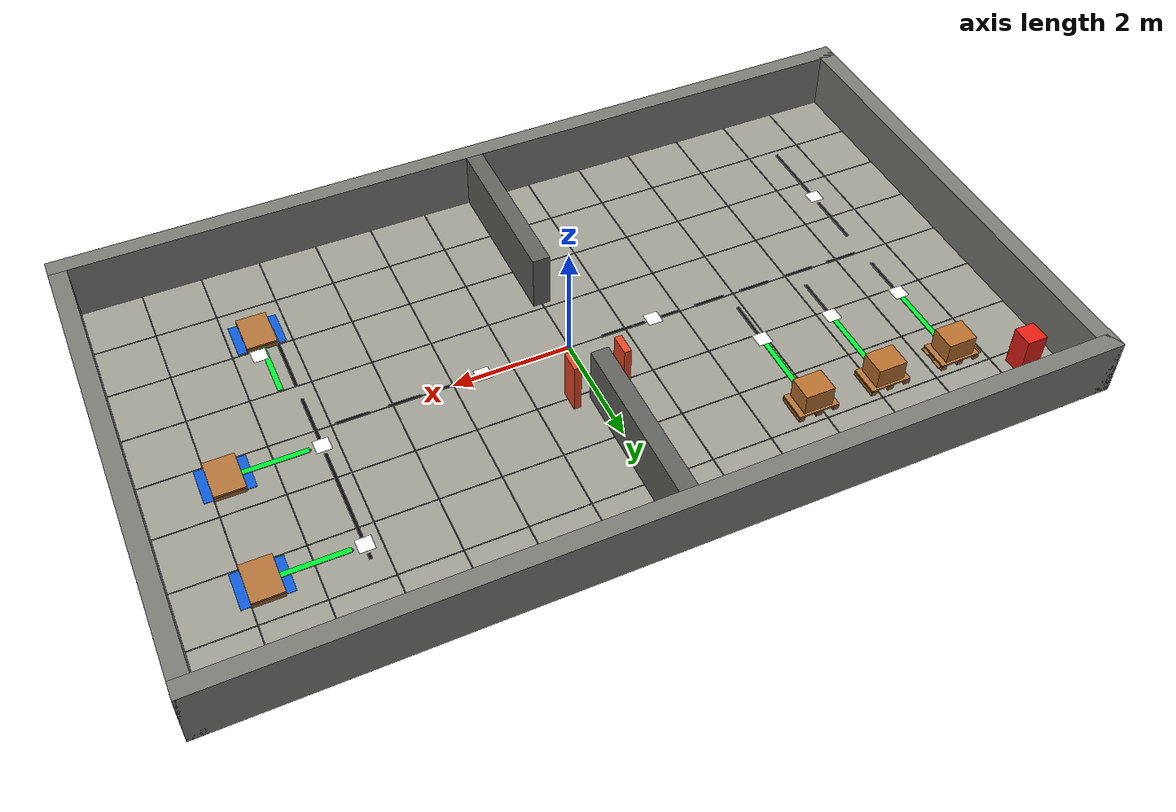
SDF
<?xml version="1.0" ?>
<sdf version="1.7">
  <world name="teknofest_arena">
    <physics name="1ms" type="ignored">
      <max_step_size>0.001</max_step_size>
      <real_time_factor>1.0</real_time_factor>
    </physics>

    <plugin filename="gz-sim-physics-system" name="gz::sim::systems::Physics"/>
    <plugin filename="gz-sim-user-commands-system" name="gz::sim::systems::UserCommands"/>
    <plugin filename="gz-sim-scene-broadcaster-system" name="gz::sim::systems::SceneBroadcaster"/>
    <plugin filename="gz-sim-sensors-system" name="gz::sim::systems::Sensors">
      <render_engine>ogre2</render_engine>
    </plugin>
    <plugin filename="gz-sim-contact-system" name="gz::sim::systems::Contact"/>

    <scene>
      <ambient>0.55 0.55 0.55 1</ambient>
      <background>0.72 0.74 0.76 1</background>
      <shadows>true</shadows>
    </scene>

    <light type="directional" name="sun">
      <cast_shadows>true</cast_shadows>
      <pose>0 0 10 0 0 0</pose>
      <diffuse>0.85 0.85 0.82 1</diffuse>
      <specular>0.25 0.25 0.25 1</specular>
      <attenuation>
        <range>1000</range>
        <constant>0.9</constant>
        <linear>0.01</linear>
        <quadratic>0.001</quadratic>
      </attenuation>
      <direction>-0.5 0.1 -0.9</direction>
    </light>

    <model name="arena_floor">
      <static>true</static>
      <pose>0 0 -0.025 0 0 0</pose>
      <link name="link">
        <collision name="collision">
          <geometry><box><size>14 8 0.05</size></box></geometry>
          <surface><friction><ode><mu>3.0</mu><mu2>3.0</mu2></ode></friction></surface>
        </collision>
        <visual name="visual">
          <geometry><box><size>14 8 0.05</size></box></geometry>
          <material>
            <ambient>0.62 0.62 0.58 1</ambient>
            <diffuse>0.62 0.62 0.58 1</diffuse>
            <specular>0.15 0.15 0.15 1</specular>
          </material>
        </visual>
      </link>
    </model>

    <!-- Visual-only floor grid, matching the reference tile look. -->
    <model name="grid_x_m6"><static>true</static><pose>-6 0 0.004 0 0 0</pose><link name="link"><visual name="visual"><geometry><box><size>0.015 8.0 0.004</size></box></geometry><material><ambient>0.36 0.36 0.34 1</ambient><diffuse>0.36 0.36 0.34 1</diffuse></material></visual></link></model>
    <model name="grid_x_m5"><static>true</static><pose>-5 0 0.004 0 0 0</pose><link name="link"><visual name="visual"><geometry><box><size>0.015 8.0 0.004</size></box></geometry><material><ambient>0.36 0.36 0.34 1</ambient><diffuse>0.36 0.36 0.34 1</diffuse></material></visual></link></model>
    <model name="grid_x_m4"><static>true</static><pose>-4 0 0.004 0 0 0</pose><link name="link"><visual name="visual"><geometry><box><size>0.015 8.0 0.004</size></box></geometry><material><ambient>0.36 0.36 0.34 1</ambient><diffuse>0.36 0.36 0.34 1</diffuse></material></visual></link></model>
    <model name="grid_x_m3"><static>true</static><pose>-3 0 0.004 0 0 0</pose><link name="link"><visual name="visual"><geometry><box><size>0.015 8.0 0.004</size></box></geometry><material><ambient>0.36 0.36 0.34 1</ambient><diffuse>0.36 0.36 0.34 1</diffuse></material></visual></link></model>
    <model name="grid_x_m2"><static>true</static><pose>-2 0 0.004 0 0 0</pose><link name="link"><visual name="visual"><geometry><box><size>0.015 8.0 0.004</size></box></geometry><material><ambient>0.36 0.36 0.34 1</ambient><diffuse>0.36 0.36 0.34 1</diffuse></material></visual></link></model>
    <model name="grid_x_m1"><static>true</static><pose>-1 0 0.004 0 0 0</pose><link name="link"><visual name="visual"><geometry><box><size>0.015 8.0 0.004</size></box></geometry><material><ambient>0.36 0.36 0.34 1</ambient><diffuse>0.36 0.36 0.34 1</diffuse></material></visual></link></model>
    <model name="grid_x_0"><static>true</static><pose>0 0 0.004 0 0 0</pose><link name="link"><visual name="visual"><geometry><box><size>0.015 8.0 0.004</size></box></geometry><material><ambient>0.36 0.36 0.34 1</ambient><diffuse>0.36 0.36 0.34 1</diffuse></material></visual></link></model>
    <model name="grid_x_1"><static>true</static><pose>1 0 0.004 0 0 0</pose><link name="link"><visual name="visual"><geometry><box><size>0.015 8.0 0.004</size></box></geometry><material><ambient>0.36 0.36 0.34 1</ambient><diffuse>0.36 0.36 0.34 1</diffuse></material></visual></link></model>
    <model name="grid_x_2"><static>true</static><pose>2 0 0.004 0 0 0</pose><link name="link"><visual name="visual"><geometry><box><size>0.015 8.0 0.004</size></box></geometry><material><ambient>0.36 0.36 0.34 1</ambient><diffuse>0.36 0.36 0.34 1</diffuse></material></visual></link></model>
    <model name="grid_x_3"><static>true</static><pose>3 0 0.004 0 0 0</pose><link name="link"><visual name="visual"><geometry><box><size>0.015 8.0 0.004</size></box></geometry><material><ambient>0.36 0.36 0.34 1</ambient><diffuse>0.36 0.36 0.34 1</diffuse></material></visual></link></model>
    <model name="grid_x_4"><static>true</static><pose>4 0 0.004 0 0 0</pose><link name="link"><visual name="visual"><geometry><box><size>0.015 8.0 0.004</size></box></geometry><material><ambient>0.36 0.36 0.34 1</ambient><diffuse>0.36 0.36 0.34 1</diffuse></material></visual></link></model>
    <model name="grid_x_5"><static>true</static><pose>5 0 0.004 0 0 0</pose><link name="link"><visual name="visual"><geometry><box><size>0.015 8.0 0.004</size></box></geometry><material><ambient>0.36 0.36 0.34 1</ambient><diffuse>0.36 0.36 0.34 1</diffuse></material></visual></link></model>
    <model name="grid_x_6"><static>true</static><pose>6 0 0.004 0 0 0</pose><link name="link"><visual name="visual"><geometry><box><size>0.015 8.0 0.004</size></box></geometry><material><ambient>0.36 0.36 0.34 1</ambient><diffuse>0.36 0.36 0.34 1</diffuse></material></visual></link></model>
    <model name="grid_y_m3"><static>true</static><pose>0 -3 0.004 0 0 0</pose><link name="link"><visual name="visual"><geometry><box><size>14.0 0.015 0.004</size></box></geometry><material><ambient>0.36 0.36 0.34 1</ambient><diffuse>0.36 0.36 0.34 1</diffuse></material></visual></link></model>
    <model name="grid_y_m2"><static>true</static><pose>0 -2 0.004 0 0 0</pose><link name="link"><visual name="visual"><geometry><box><size>14.0 0.015 0.004</size></box></geometry><material><ambient>0.36 0.36 0.34 1</ambient><diffuse>0.36 0.36 0.34 1</diffuse></material></visual></link></model>
    <model name="grid_y_m1"><static>true</static><pose>0 -1 0.004 0 0 0</pose><link name="link"><visual name="visual"><geometry><box><size>14.0 0.015 0.004</size></box></geometry><material><ambient>0.36 0.36 0.34 1</ambient><diffuse>0.36 0.36 0.34 1</diffuse></material></visual></link></model>
    <model name="grid_y_0"><static>true</static><pose>0 0 0.004 0 0 0</pose><link name="link"><visual name="visual"><geometry><box><size>14.0 0.015 0.004</size></box></geometry><material><ambient>0.36 0.36 0.34 1</ambient><diffuse>0.36 0.36 0.34 1</diffuse></material></visual></link></model>
    <model name="grid_y_1"><static>true</static><pose>0 1 0.004 0 0 0</pose><link name="link"><visual name="visual"><geometry><box><size>14.0 0.015 0.004</size></box></geometry><material><ambient>0.36 0.36 0.34 1</ambient><diffuse>0.36 0.36 0.34 1</diffuse></material></visual></link></model>
    <model name="grid_y_2"><static>true</static><pose>0 2 0.004 0 0 0</pose><link name="link"><visual name="visual"><geometry><box><size>14.0 0.015 0.004</size></box></geometry><material><ambient>0.36 0.36 0.34 1</ambient><diffuse>0.36 0.36 0.34 1</diffuse></material></visual></link></model>
    <model name="grid_y_3"><static>true</static><pose>0 3 0.004 0 0 0</pose><link name="link"><visual name="visual"><geometry><box><size>14.0 0.015 0.004</size></box></geometry><material><ambient>0.36 0.36 0.34 1</ambient><diffuse>0.36 0.36 0.34 1</diffuse></material></visual></link></model>

    <!-- Thick closed outer walls, all high enough for the LiDAR plane. -->
    <model name="wall_south">
      <static>true</static>
      <pose>0 -4.15 0.5 0 0 0</pose>
      <link name="link">
        <collision name="collision"><geometry><box><size>14.6 0.30 1.0</size></box></geometry></collision>
        <visual name="visual"><geometry><box><size>14.6 0.30 1.0</size></box></geometry><material><ambient>0.48 0.48 0.46 1</ambient><diffuse>0.48 0.48 0.46 1</diffuse></material></visual>
      </link>
    </model>
    <model name="wall_north">
      <static>true</static>
      <pose>0 4.15 0.5 0 0 0</pose>
      <link name="link">
        <collision name="collision"><geometry><box><size>14.6 0.30 1.0</size></box></geometry></collision>
        <visual name="visual"><geometry><box><size>14.6 0.30 1.0</size></box></geometry><material><ambient>0.48 0.48 0.46 1</ambient><diffuse>0.48 0.48 0.46 1</diffuse></material></visual>
      </link>
    </model>
    <model name="wall_west">
      <static>true</static>
      <pose>-7.15 0 0.5 0 0 0</pose>
      <link name="link">
        <collision name="collision"><geometry><box><size>0.30 8.6 1.0</size></box></geometry></collision>
        <visual name="visual"><geometry><box><size>0.30 8.6 1.0</size></box></geometry><material><ambient>0.48 0.48 0.46 1</ambient><diffuse>0.48 0.48 0.46 1</diffuse></material></visual>
      </link>
    </model>
    <model name="wall_east">
      <static>true</static>
      <pose>7.15 0 0.5 0 0 0</pose>
      <link name="link">
        <collision name="collision"><geometry><box><size>0.30 8.6 1.0</size></box></geometry></collision>
        <visual name="visual"><geometry><box><size>0.30 8.6 1.0</size></box></geometry><material><ambient>0.48 0.48 0.46 1</ambient><diffuse>0.48 0.48 0.46 1</diffuse></material></visual>
      </link>
    </model>

    <!-- Central divider with the gate opening in the middle. -->
    <model name="middle_wall_north">
      <static>true</static>
      <pose>0 2.55 0.5 0 0 0</pose>
      <link name="link">
        <collision name="collision"><geometry><box><size>0.30 2.90 1.0</size></box></geometry></collision>
        <visual name="visual"><geometry><box><size>0.30 2.90 1.0</size></box></geometry><material><ambient>0.38 0.38 0.36 1</ambient><diffuse>0.38 0.38 0.36 1</diffuse></material></visual>
      </link>
    </model>
    <model name="middle_wall_south">
      <static>true</static>
      <pose>0 -2.55 0.5 0 0 0</pose>
      <link name="link">
        <collision name="collision"><geometry><box><size>0.30 2.90 1.0</size></box></geometry></collision>
        <visual name="visual"><geometry><box><size>0.30 2.90 1.0</size></box></geometry><material><ambient>0.38 0.38 0.36 1</ambient><diffuse>0.38 0.38 0.36 1</diffuse></material></visual>
      </link>
    </model>
    <model name="gate_post_left">
      <static>true</static>
      <pose>-0.42 1.05 0.45 0 0 0</pose>
      <link name="link">
        <collision name="collision"><geometry><box><size>0.12 0.36 0.90</size></box></geometry></collision>
        <visual name="visual"><geometry><box><size>0.12 0.36 0.90</size></box></geometry><material><ambient>0.90 0.28 0.14 1</ambient><diffuse>0.90 0.28 0.14 1</diffuse></material></visual>
      </link>
    </model>
    <model name="gate_post_right">
      <static>true</static>
      <pose>0.42 1.05 0.45 0 0 0</pose>
      <link name="link">
        <collision name="collision"><geometry><box><size>0.12 0.36 0.90</size></box></geometry></collision>
        <visual name="visual"><geometry><box><size>0.12 0.36 0.90</size></box></geometry><material><ambient>0.90 0.28 0.14 1</ambient><diffuse>0.90 0.28 0.14 1</diffuse></material></visual>
      </link>
    </model>

    <!-- TEKNOFEST pallet/load samples. Pallet lower strips show the 0.10 / 0.20 / 0.10 / 0.20 / 0.10 m fork-entry pattern. -->
    <model name="pallet_load_a1">
      <static>false</static>
      <pose>-5.50 2.65 0 0 0 0</pose>
      <link name="pallet">
        <inertial><mass>0.3</mass><inertia><ixx>0.009</ixx><iyy>0.011</iyy><izz>0.014</izz></inertia></inertial>
        <collision name="lower_left"><pose>-0.30 0 0.04 0 0 0</pose><geometry><box><size>0.10 0.50 0.08</size></box></geometry><surface><friction><ode><mu>3.0</mu><mu2>3.0</mu2></ode></friction></surface></collision>
        <collision name="lower_center"><pose>0 0 0.04 0 0 0</pose><geometry><box><size>0.10 0.50 0.08</size></box></geometry><surface><friction><ode><mu>3.0</mu><mu2>3.0</mu2></ode></friction></surface></collision>
        <collision name="lower_right"><pose>0.30 0 0.04 0 0 0</pose><geometry><box><size>0.10 0.50 0.08</size></box></geometry><surface><friction><ode><mu>3.0</mu><mu2>3.0</mu2></ode></friction></surface></collision>
        <collision name="top_deck"><pose>0 0 0.095 0 0 0</pose><geometry><box><size>0.70 0.50 0.03</size></box></geometry><surface><friction><ode><mu>3.0</mu><mu2>3.0</mu2></ode></friction></surface></collision>
        <collision name="fork_support_left"><pose>0 0.15 0.075 0 0 0</pose><geometry><box><size>0.82 0.16 0.010</size></box></geometry><surface><friction><ode><mu>3.5</mu><mu2>3.5</mu2></ode></friction></surface></collision>
        <collision name="fork_support_right"><pose>0 -0.15 0.075 0 0 0</pose><geometry><box><size>0.82 0.16 0.010</size></box></geometry><surface><friction><ode><mu>3.5</mu><mu2>3.5</mu2></ode></friction></surface></collision>
        <visual name="visual_lower_left"><pose>-0.30 0 0.04 0 0 0</pose><geometry><box><size>0.10 0.50 0.08</size></box></geometry><material><ambient>0.58 0.36 0.16 1</ambient><diffuse>0.58 0.36 0.16 1</diffuse></material></visual>
        <visual name="visual_lower_center"><pose>0 0 0.04 0 0 0</pose><geometry><box><size>0.10 0.50 0.08</size></box></geometry><material><ambient>0.58 0.36 0.16 1</ambient><diffuse>0.58 0.36 0.16 1</diffuse></material></visual>
        <visual name="visual_lower_right"><pose>0.30 0 0.04 0 0 0</pose><geometry><box><size>0.10 0.50 0.08</size></box></geometry><material><ambient>0.58 0.36 0.16 1</ambient><diffuse>0.58 0.36 0.16 1</diffuse></material></visual>
        <visual name="visual_top_deck"><pose>0 0 0.095 0 0 0</pose><geometry><box><size>0.70 0.50 0.03</size></box></geometry><material><ambient>0.70 0.45 0.22 1</ambient><diffuse>0.70 0.45 0.22 1</diffuse></material></visual>
        <visual name="visual_fork_support_left"><pose>0 0.15 0.075 0 0 0</pose><geometry><box><size>0.82 0.16 0.010</size></box></geometry><material><ambient>0.62 0.40 0.18 1</ambient><diffuse>0.62 0.40 0.18 1</diffuse></material></visual>
        <visual name="visual_fork_support_right"><pose>0 -0.15 0.075 0 0 0</pose><geometry><box><size>0.82 0.16 0.010</size></box></geometry><material><ambient>0.62 0.40 0.18 1</ambient><diffuse>0.62 0.40 0.18 1</diffuse></material></visual>
      </link>
      <link name="load_box">
        <pose>0 0 0 0 0 0</pose>
        <inertial><mass>0.5</mass><inertia><ixx>0.0065</ixx><iyy>0.0072</iyy><izz>0.0071</izz></inertia></inertial>
        <collision name="collision"><pose>0 0 0.29 0 0 0</pose><geometry><box><size>0.50 0.42 0.36</size></box></geometry><surface><friction><ode><mu>3.0</mu><mu2>3.0</mu2></ode></friction></surface></collision>
        <visual name="visual"><pose>0 0 0.29 0 0 0</pose><geometry><box><size>0.50 0.42 0.36</size></box></geometry><material><ambient>0.72 0.44 0.18 1</ambient><diffuse>0.72 0.44 0.18 1</diffuse></material></visual>
      </link>
      <joint name="load_fixed_joint" type="fixed"><parent>pallet</parent><child>load_box</child></joint>
    </model>
    <model name="pallet_load_a2">
      <static>false</static>
      <pose>-4.20 2.65 0 0 0 0</pose>
      <link name="pallet">
        <inertial><mass>1.5</mass><inertia><ixx>0.045</ixx><iyy>0.055</iyy><izz>0.070</izz></inertia></inertial>
        <collision name="lower_left"><pose>-0.30 0 0.04 0 0 0</pose><geometry><box><size>0.10 0.50 0.08</size></box></geometry><surface><friction><ode><mu>3.0</mu><mu2>3.0</mu2></ode></friction></surface></collision>
        <collision name="lower_center"><pose>0 0 0.04 0 0 0</pose><geometry><box><size>0.10 0.50 0.08</size></box></geometry><surface><friction><ode><mu>3.0</mu><mu2>3.0</mu2></ode></friction></surface></collision>
        <collision name="lower_right"><pose>0.30 0 0.04 0 0 0</pose><geometry><box><size>0.10 0.50 0.08</size></box></geometry><surface><friction><ode><mu>3.0</mu><mu2>3.0</mu2></ode></friction></surface></collision>
        <collision name="top_deck"><pose>0 0 0.095 0 0 0</pose><geometry><box><size>0.70 0.50 0.03</size></box></geometry><surface><friction><ode><mu>3.0</mu><mu2>3.0</mu2></ode></friction></surface></collision>
        <visual name="visual_lower_left"><pose>-0.30 0 0.04 0 0 0</pose><geometry><box><size>0.10 0.50 0.08</size></box></geometry><material><ambient>0.58 0.36 0.16 1</ambient><diffuse>0.58 0.36 0.16 1</diffuse></material></visual>
        <visual name="visual_lower_center"><pose>0 0 0.04 0 0 0</pose><geometry><box><size>0.10 0.50 0.08</size></box></geometry><material><ambient>0.58 0.36 0.16 1</ambient><diffuse>0.58 0.36 0.16 1</diffuse></material></visual>
        <visual name="visual_lower_right"><pose>0.30 0 0.04 0 0 0</pose><geometry><box><size>0.10 0.50 0.08</size></box></geometry><material><ambient>0.58 0.36 0.16 1</ambient><diffuse>0.58 0.36 0.16 1</diffuse></material></visual>
        <visual name="visual_top_deck"><pose>0 0 0.095 0 0 0</pose><geometry><box><size>0.70 0.50 0.03</size></box></geometry><material><ambient>0.70 0.45 0.22 1</ambient><diffuse>0.70 0.45 0.22 1</diffuse></material></visual>
      </link>
      <link name="load_box">
        <inertial><mass>5.0</mass><inertia><ixx>0.065</ixx><iyy>0.072</iyy><izz>0.071</izz></inertia></inertial>
        <collision name="collision"><pose>0 0 0.29 0 0 0</pose><geometry><box><size>0.50 0.42 0.36</size></box></geometry><surface><friction><ode><mu>3.0</mu><mu2>3.0</mu2></ode></friction></surface></collision>
        <visual name="visual"><pose>0 0 0.29 0 0 0</pose><geometry><box><size>0.50 0.42 0.36</size></box></geometry><material><ambient>0.72 0.44 0.18 1</ambient><diffuse>0.72 0.44 0.18 1</diffuse></material></visual>
      </link>
      <joint name="load_fixed_joint" type="fixed"><parent>pallet</parent><child>load_box</child></joint>
    </model>
    <model name="pallet_load_a3">
      <static>false</static>
      <pose>-2.90 2.65 0 0 0 0</pose>
      <link name="pallet">
        <inertial><mass>1.5</mass><inertia><ixx>0.045</ixx><iyy>0.055</iyy><izz>0.070</izz></inertia></inertial>
        <collision name="lower_left"><pose>-0.30 0 0.04 0 0 0</pose><geometry><box><size>0.10 0.50 0.08</size></box></geometry><surface><friction><ode><mu>3.0</mu><mu2>3.0</mu2></ode></friction></surface></collision>
        <collision name="lower_center"><pose>0 0 0.04 0 0 0</pose><geometry><box><size>0.10 0.50 0.08</size></box></geometry><surface><friction><ode><mu>3.0</mu><mu2>3.0</mu2></ode></friction></surface></collision>
        <collision name="lower_right"><pose>0.30 0 0.04 0 0 0</pose><geometry><box><size>0.10 0.50 0.08</size></box></geometry><surface><friction><ode><mu>3.0</mu><mu2>3.0</mu2></ode></friction></surface></collision>
        <collision name="top_deck"><pose>0 0 0.095 0 0 0</pose><geometry><box><size>0.70 0.50 0.03</size></box></geometry><surface><friction><ode><mu>3.0</mu><mu2>3.0</mu2></ode></friction></surface></collision>
        <visual name="visual_lower_left"><pose>-0.30 0 0.04 0 0 0</pose><geometry><box><size>0.10 0.50 0.08</size></box></geometry><material><ambient>0.58 0.36 0.16 1</ambient><diffuse>0.58 0.36 0.16 1</diffuse></material></visual>
        <visual name="visual_lower_center"><pose>0 0 0.04 0 0 0</pose><geometry><box><size>0.10 0.50 0.08</size></box></geometry><material><ambient>0.58 0.36 0.16 1</ambient><diffuse>0.58 0.36 0.16 1</diffuse></material></visual>
        <visual name="visual_lower_right"><pose>0.30 0 0.04 0 0 0</pose><geometry><box><size>0.10 0.50 0.08</size></box></geometry><material><ambient>0.58 0.36 0.16 1</ambient><diffuse>0.58 0.36 0.16 1</diffuse></material></visual>
        <visual name="visual_top_deck"><pose>0 0 0.095 0 0 0</pose><geometry><box><size>0.70 0.50 0.03</size></box></geometry><material><ambient>0.70 0.45 0.22 1</ambient><diffuse>0.70 0.45 0.22 1</diffuse></material></visual>
      </link>
      <link name="load_box">
        <inertial><mass>5.0</mass><inertia><ixx>0.065</ixx><iyy>0.072</iyy><izz>0.071</izz></inertia></inertial>
        <collision name="collision"><pose>0 0 0.29 0 0 0</pose><geometry><box><size>0.50 0.42 0.36</size></box></geometry><surface><friction><ode><mu>3.0</mu><mu2>3.0</mu2></ode></friction></surface></collision>
        <visual name="visual"><pose>0 0 0.29 0 0 0</pose><geometry><box><size>0.50 0.42 0.36</size></box></geometry><material><ambient>0.72 0.44 0.18 1</ambient><diffuse>0.72 0.44 0.18 1</diffuse></material></visual>
      </link>
      <joint name="load_fixed_joint" type="fixed"><parent>pallet</parent><child>load_box</child></joint>
    </model>

    <model name="drop_zone_b1"><static>true</static><pose>5.75 2.35 0.006 0 0 0</pose><link name="link"><visual name="visual"><geometry><box><size>0.80 0.65 0.01</size></box></geometry><material><ambient>0.05 0.36 0.85 1</ambient><diffuse>0.05 0.36 0.85 1</diffuse></material></visual></link></model>
    <model name="drop_zone_b2"><static>true</static><pose>5.75 0.35 0.006 0 0 0</pose><link name="link"><visual name="visual"><geometry><box><size>0.80 0.65 0.01</size></box></geometry><material><ambient>0.05 0.36 0.85 1</ambient><diffuse>0.05 0.36 0.85 1</diffuse></material></visual></link></model>
    <model name="drop_zone_b3"><static>true</static><pose>4.50 -2.35 0.006 0 0 0</pose><link name="link"><visual name="visual"><geometry><box><size>0.80 0.65 0.01</size></box></geometry><material><ambient>0.05 0.36 0.85 1</ambient><diffuse>0.05 0.36 0.85 1</diffuse></material></visual></link></model>

    <model name="empty_pallet_b1">
      <static>true</static>
      <pose>5.75 2.35 0 0 0 -1.5708</pose>
      <link name="pallet">
        <collision name="lower_left"><pose>-0.30 0 0.04 0 0 0</pose><geometry><box><size>0.10 0.50 0.08</size></box></geometry></collision>
        <collision name="lower_center"><pose>0 0 0.04 0 0 0</pose><geometry><box><size>0.10 0.50 0.08</size></box></geometry></collision>
        <collision name="lower_right"><pose>0.30 0 0.04 0 0 0</pose><geometry><box><size>0.10 0.50 0.08</size></box></geometry></collision>
        <collision name="top_deck"><pose>0 0 0.095 0 0 0</pose><geometry><box><size>0.70 0.50 0.03</size></box></geometry></collision>
        <visual name="visual_lower_left"><pose>-0.30 0 0.04 0 0 0</pose><geometry><box><size>0.10 0.50 0.08</size></box></geometry><material><ambient>0.58 0.36 0.16 1</ambient><diffuse>0.58 0.36 0.16 1</diffuse></material></visual>
        <visual name="visual_lower_center"><pose>0 0 0.04 0 0 0</pose><geometry><box><size>0.10 0.50 0.08</size></box></geometry><material><ambient>0.58 0.36 0.16 1</ambient><diffuse>0.58 0.36 0.16 1</diffuse></material></visual>
        <visual name="visual_lower_right"><pose>0.30 0 0.04 0 0 0</pose><geometry><box><size>0.10 0.50 0.08</size></box></geometry><material><ambient>0.58 0.36 0.16 1</ambient><diffuse>0.58 0.36 0.16 1</diffuse></material></visual>
        <visual name="visual_top_deck"><pose>0 0 0.095 0 0 0</pose><geometry><box><size>0.70 0.50 0.03</size></box></geometry><material><ambient>0.70 0.45 0.22 1</ambient><diffuse>0.70 0.45 0.22 1</diffuse></material></visual>
      </link>
    </model>
    <model name="empty_pallet_b2">
      <static>true</static>
      <pose>5.75 0.35 0 0 0 -1.5708</pose>
      <link name="pallet">
        <collision name="lower_left"><pose>-0.30 0 0.04 0 0 0</pose><geometry><box><size>0.10 0.50 0.08</size></box></geometry></collision>
        <collision name="lower_center"><pose>0 0 0.04 0 0 0</pose><geometry><box><size>0.10 0.50 0.08</size></box></geometry></collision>
        <collision name="lower_right"><pose>0.30 0 0.04 0 0 0</pose><geometry><box><size>0.10 0.50 0.08</size></box></geometry></collision>
        <collision name="top_deck"><pose>0 0 0.095 0 0 0</pose><geometry><box><size>0.70 0.50 0.03</size></box></geometry></collision>
        <visual name="visual_lower_left"><pose>-0.30 0 0.04 0 0 0</pose><geometry><box><size>0.10 0.50 0.08</size></box></geometry><material><ambient>0.58 0.36 0.16 1</ambient><diffuse>0.58 0.36 0.16 1</diffuse></material></visual>
        <visual name="visual_lower_center"><pose>0 0 0.04 0 0 0</pose><geometry><box><size>0.10 0.50 0.08</size></box></geometry><material><ambient>0.58 0.36 0.16 1</ambient><diffuse>0.58 0.36 0.16 1</diffuse></material></visual>
        <visual name="visual_lower_right"><pose>0.30 0 0.04 0 0 0</pose><geometry><box><size>0.10 0.50 0.08</size></box></geometry><material><ambient>0.58 0.36 0.16 1</ambient><diffuse>0.58 0.36 0.16 1</diffuse></material></visual>
        <visual name="visual_top_deck"><pose>0 0 0.095 0 0 0</pose><geometry><box><size>0.70 0.50 0.03</size></box></geometry><material><ambient>0.70 0.45 0.22 1</ambient><diffuse>0.70 0.45 0.22 1</diffuse></material></visual>
      </link>
    </model>
    <model name="empty_pallet_b3">
      <static>true</static>
      <pose>4.50 -2.35 0 0 0 -1.5708</pose>
      <link name="pallet">
        <!-- B3 is a visual placement target. The carried object already includes
             its own pallet, so collision geometry here would block unloading. -->
        <visual name="visual_lower_left"><pose>-0.30 0 0.04 0 0 0</pose><geometry><box><size>0.10 0.50 0.08</size></box></geometry><material><ambient>0.58 0.36 0.16 1</ambient><diffuse>0.58 0.36 0.16 1</diffuse></material></visual>
        <visual name="visual_lower_center"><pose>0 0 0.04 0 0 0</pose><geometry><box><size>0.10 0.50 0.08</size></box></geometry><material><ambient>0.58 0.36 0.16 1</ambient><diffuse>0.58 0.36 0.16 1</diffuse></material></visual>
        <visual name="visual_lower_right"><pose>0.30 0 0.04 0 0 0</pose><geometry><box><size>0.10 0.50 0.08</size></box></geometry><material><ambient>0.58 0.36 0.16 1</ambient><diffuse>0.58 0.36 0.16 1</diffuse></material></visual>
        <visual name="visual_top_deck"><pose>0 0 0.095 0 0 0</pose><geometry><box><size>0.70 0.50 0.03</size></box></geometry><material><ambient>0.70 0.45 0.22 1</ambient><diffuse>0.70 0.45 0.22 1</diffuse></material></visual>
      </link>
    </model>

    <!-- Visual-only route lines. These intentionally have no collision geometry. -->
    <model name="pickup_path_1_lower"><static>true</static><pose>-5.50 0.6625 0.018 0 0 0</pose><link name="link"><visual name="visual"><geometry><box><size>0.05 0.675 0.012</size></box></geometry><material><ambient>0.02 0.02 0.02 1</ambient><diffuse>0.02 0.02 0.02 1</diffuse></material></visual></link></model>
    <model name="pickup_path_1_upper"><static>true</static><pose>-5.50 1.7375 0.018 0 0 0</pose><link name="link"><visual name="visual"><geometry><box><size>0.05 0.875 0.012</size></box></geometry><material><ambient>0.02 0.02 0.02 1</ambient><diffuse>0.02 0.02 0.02 1</diffuse></material></visual></link></model>
    <model name="pickup_path_2_lower"><static>true</static><pose>-4.20 0.6625 0.018 0 0 0</pose><link name="link"><visual name="visual"><geometry><box><size>0.05 0.675 0.012</size></box></geometry><material><ambient>0.02 0.02 0.02 1</ambient><diffuse>0.02 0.02 0.02 1</diffuse></material></visual></link></model>
    <model name="pickup_path_2_upper"><static>true</static><pose>-4.20 1.7375 0.018 0 0 0</pose><link name="link"><visual name="visual"><geometry><box><size>0.05 0.875 0.012</size></box></geometry><material><ambient>0.02 0.02 0.02 1</ambient><diffuse>0.02 0.02 0.02 1</diffuse></material></visual></link></model>
    <model name="pickup_path_3_lower"><static>true</static><pose>-2.90 0.6625 0.018 0 0 0</pose><link name="link"><visual name="visual"><geometry><box><size>0.05 0.675 0.012</size></box></geometry><material><ambient>0.02 0.02 0.02 1</ambient><diffuse>0.02 0.02 0.02 1</diffuse></material></visual></link></model>
    <model name="pickup_path_3_upper"><static>true</static><pose>-2.90 1.7375 0.018 0 0 0</pose><link name="link"><visual name="visual"><geometry><box><size>0.05 0.875 0.012</size></box></geometry><material><ambient>0.02 0.02 0.02 1</ambient><diffuse>0.02 0.02 0.02 1</diffuse></material></visual></link></model>
    <model name="start_path_lower"><static>true</static><pose>-5.50 -2.2875 0.018 0 0 0</pose><link name="link"><visual name="visual"><geometry><box><size>0.05 1.175 0.012</size></box></geometry><material><ambient>0.02 0.02 0.02 1</ambient><diffuse>0.02 0.02 0.02 1</diffuse></material></visual></link></model>
    <model name="start_path_upper"><static>true</static><pose>-5.50 -0.9125 0.018 0 0 0</pose><link name="link"><visual name="visual"><geometry><box><size>0.05 0.975 0.012</size></box></geometry><material><ambient>0.02 0.02 0.02 1</ambient><diffuse>0.02 0.02 0.02 1</diffuse></material></visual></link></model>

    <model name="main_route_dash_01"><static>true</static><pose>-5.10 0.00 0.018 0 0 0</pose><link name="link"><visual name="visual"><geometry><box><size>0.55 0.05 0.012</size></box></geometry><material><ambient>0.02 0.02 0.02 1</ambient><diffuse>0.02 0.02 0.02 1</diffuse></material></visual></link></model>
    <model name="main_route_dash_02"><static>true</static><pose>-4.25 0.00 0.018 0 0 0</pose><link name="link"><visual name="visual"><geometry><box><size>0.55 0.05 0.012</size></box></geometry><material><ambient>0.02 0.02 0.02 1</ambient><diffuse>0.02 0.02 0.02 1</diffuse></material></visual></link></model>
    <model name="main_route_dash_03"><static>true</static><pose>-3.40 0.00 0.018 0 0 0</pose><link name="link"><visual name="visual"><geometry><box><size>0.55 0.05 0.012</size></box></geometry><material><ambient>0.02 0.02 0.02 1</ambient><diffuse>0.02 0.02 0.02 1</diffuse></material></visual></link></model>
    <model name="main_route_dash_04"><static>true</static><pose>-2.55 0.00 0.018 0 0 0</pose><link name="link"><visual name="visual"><geometry><box><size>0.55 0.05 0.012</size></box></geometry><material><ambient>0.02 0.02 0.02 1</ambient><diffuse>0.02 0.02 0.02 1</diffuse></material></visual></link></model>
    <model name="main_route_dash_05_left"><static>true</static><pose>-1.8125 0.00 0.018 0 0 0</pose><link name="link"><visual name="visual"><geometry><box><size>0.325 0.05 0.012</size></box></geometry><material><ambient>0.02 0.02 0.02 1</ambient><diffuse>0.02 0.02 0.02 1</diffuse></material></visual></link></model>
    <model name="main_route_dash_05_right"><static>true</static><pose>-1.25 0.00 0.018 0 0 0</pose><link name="link"><visual name="visual"><geometry><box><size>0.20 0.05 0.012</size></box></geometry><material><ambient>0.02 0.02 0.02 1</ambient><diffuse>0.02 0.02 0.02 1</diffuse></material></visual></link></model>
    <model name="main_route_dash_06"><static>true</static><pose>-0.85 0.00 0.018 0 0 0</pose><link name="link"><visual name="visual"><geometry><box><size>0.55 0.05 0.012</size></box></geometry><material><ambient>0.02 0.02 0.02 1</ambient><diffuse>0.02 0.02 0.02 1</diffuse></material></visual></link></model>
    <model name="main_route_dash_07"><static>true</static><pose>0.25 0.00 0.018 0 0 0</pose><link name="link"><visual name="visual"><geometry><box><size>0.55 0.05 0.012</size></box></geometry><material><ambient>0.02 0.02 0.02 1</ambient><diffuse>0.02 0.02 0.02 1</diffuse></material></visual></link></model>
    <model name="main_route_dash_08"><static>true</static><pose>1.10 0.00 0.018 0 0 0</pose><link name="link"><visual name="visual"><geometry><box><size>0.55 0.05 0.012</size></box></geometry><material><ambient>0.02 0.02 0.02 1</ambient><diffuse>0.02 0.02 0.02 1</diffuse></material></visual></link></model>
    <model name="main_route_dash_09"><static>true</static><pose>1.95 0.00 0.018 0 0 0</pose><link name="link"><visual name="visual"><geometry><box><size>0.55 0.05 0.012</size></box></geometry><material><ambient>0.02 0.02 0.02 1</ambient><diffuse>0.02 0.02 0.02 1</diffuse></material></visual></link></model>
    <model name="main_route_dash_10"><static>true</static><pose>2.80 0.00 0.018 0 0 0</pose><link name="link"><visual name="visual"><geometry><box><size>0.55 0.05 0.012</size></box></geometry><material><ambient>0.02 0.02 0.02 1</ambient><diffuse>0.02 0.02 0.02 1</diffuse></material></visual></link></model>
    <model name="main_route_dash_11"><static>true</static><pose>3.65 0.00 0.018 0 0 0</pose><link name="link"><visual name="visual"><geometry><box><size>0.55 0.05 0.012</size></box></geometry><material><ambient>0.02 0.02 0.02 1</ambient><diffuse>0.02 0.02 0.02 1</diffuse></material></visual></link></model>

    <model name="right_route_vertical_1"><static>true</static><pose>4.25 -1.6875 0.018 0 0 0</pose><link name="link"><visual name="visual"><geometry><box><size>0.05 1.375 0.012</size></box></geometry><material><ambient>0.02 0.02 0.02 1</ambient><diffuse>0.02 0.02 0.02 1</diffuse></material></visual></link></model>
    <model name="right_route_vertical_2"><static>true</static><pose>4.25 -0.25 0.018 0 0 0</pose><link name="link"><visual name="visual"><geometry><box><size>0.05 0.90 0.012</size></box></geometry><material><ambient>0.02 0.02 0.02 1</ambient><diffuse>0.02 0.02 0.02 1</diffuse></material></visual></link></model>
    <model name="right_route_vertical_3"><static>true</static><pose>4.25 1.35 0.018 0 0 0</pose><link name="link"><visual name="visual"><geometry><box><size>0.05 1.70 0.012</size></box></geometry><material><ambient>0.02 0.02 0.02 1</ambient><diffuse>0.02 0.02 0.02 1</diffuse></material></visual></link></model>
    <model name="right_route_vertical_4"><static>true</static><pose>4.25 2.55 0.018 0 0 0</pose><link name="link"><visual name="visual"><geometry><box><size>0.05 0.10 0.012</size></box></geometry><material><ambient>0.02 0.02 0.02 1</ambient><diffuse>0.02 0.02 0.02 1</diffuse></material></visual></link></model>
    <model name="right_route_top"><static>true</static><pose>4.95 2.35 0.018 0 0 0</pose><link name="link"><visual name="visual"><geometry><box><size>1.05 0.05 0.012</size></box></geometry><material><ambient>0.02 0.02 0.02 1</ambient><diffuse>0.02 0.02 0.02 1</diffuse></material></visual></link></model>
    <model name="right_route_middle"><static>true</static><pose>4.95 0.35 0.018 0 0 0</pose><link name="link"><visual name="visual"><geometry><box><size>1.05 0.05 0.012</size></box></geometry><material><ambient>0.02 0.02 0.02 1</ambient><diffuse>0.02 0.02 0.02 1</diffuse></material></visual></link></model>
    <model name="right_route_lower"><static>true</static><pose>4.38 -2.35 0.018 0 0 0</pose><link name="link"><visual name="visual"><geometry><box><size>0.30 0.05 0.012</size></box></geometry><material><ambient>0.02 0.02 0.02 1</ambient><diffuse>0.02 0.02 0.02 1</diffuse></material></visual></link></model>

    <!-- Solid colored precision lines for camera-based fine alignment before pickup/drop. -->
    <model name="precision_line_a1"><static>true</static><pose>-5.50 1.85 0.032 0 0 0</pose><link name="link"><visual name="visual"><geometry><box><size>0.09 1.20 0.012</size></box></geometry><material><ambient>0.00 0.95 0.20 1</ambient><diffuse>0.00 0.95 0.20 1</diffuse></material></visual></link></model>
    <model name="precision_line_a2"><static>true</static><pose>-4.20 1.85 0.032 0 0 0</pose><link name="link"><visual name="visual"><geometry><box><size>0.09 1.20 0.012</size></box></geometry><material><ambient>0.00 0.95 0.20 1</ambient><diffuse>0.00 0.95 0.20 1</diffuse></material></visual></link></model>
    <model name="precision_line_a3"><static>true</static><pose>-2.90 1.85 0.032 0 0 0</pose><link name="link"><visual name="visual"><geometry><box><size>0.09 1.20 0.012</size></box></geometry><material><ambient>0.00 0.95 0.20 1</ambient><diffuse>0.00 0.95 0.20 1</diffuse></material></visual></link></model>
    <model name="precision_line_b1"><static>true</static><pose>5.05 2.35 0.032 0 0 0</pose><link name="link"><visual name="visual"><geometry><box><size>1.20 0.09 0.012</size></box></geometry><material><ambient>0.00 0.95 0.20 1</ambient><diffuse>0.00 0.95 0.20 1</diffuse></material></visual></link></model>
    <model name="precision_line_b2"><static>true</static><pose>5.05 0.35 0.032 0 0 0</pose><link name="link"><visual name="visual"><geometry><box><size>1.20 0.09 0.012</size></box></geometry><material><ambient>0.00 0.95 0.20 1</ambient><diffuse>0.00 0.95 0.20 1</diffuse></material></visual></link></model>
    <model name="precision_line_b3"><static>true</static><pose>4.50 -1.60 0.032 0 0 0</pose><link name="link"><visual name="visual"><geometry><box><size>0.09 1.20 0.012</size></box></geometry><material><ambient>0.00 0.95 0.20 1</ambient><diffuse>0.00 0.95 0.20 1</diffuse></material></visual></link></model>

    <model name="test_obstacle">
      <static>true</static>
      <pose>-6.40 3.30 0.35 0 0 0</pose>
      <link name="link">
        <collision name="collision"><geometry><box><size>0.35 0.35 0.70</size></box></geometry></collision>
        <visual name="visual"><geometry><box><size>0.35 0.35 0.70</size></box></geometry><material><ambient>0.90 0.12 0.08 1</ambient><diffuse>0.90 0.12 0.08 1</diffuse></material></visual>
      </link>
    </model>

    <!-- Floor QR markers, placed about 1.5 m before their logical mission targets. -->
    <model name="qr_start">
      <static>true</static>
      <pose>-5.50 -1.55 0.045 0 0 0</pose>
      <link name="link">
        <visual name="visual">
          <cast_shadows>false</cast_shadows>
          <geometry><plane><normal>0 0 1</normal><size>0.25 0.25</size></plane></geometry>
          <material>
            <ambient>1 1 1 1</ambient>
            <diffuse>1 1 1 1</diffuse>
            <specular>0 0 0 1</specular>
            <pbr>
              <metal>
                <albedo_map>qr/q1.png</albedo_map>
                <metalness>0</metalness>
                <roughness>1</roughness>
              </metal>
            </pbr>
          </material>
        </visual>
      </link>
    </model>
    <model name="qr_a1">
      <static>true</static>
      <pose>-5.50 1.15 0.045 0 0 0</pose>
      <link name="link">
        <visual name="visual">
          <cast_shadows>false</cast_shadows>
          <geometry><plane><normal>0 0 1</normal><size>0.25 0.25</size></plane></geometry>
          <material>
            <ambient>1 1 1 1</ambient>
            <diffuse>1 1 1 1</diffuse>
            <specular>0 0 0 1</specular>
            <pbr>
              <metal>
                <albedo_map>qr/q2.png</albedo_map>
                <metalness>0</metalness>
                <roughness>1</roughness>
              </metal>
            </pbr>
          </material>
        </visual>
      </link>
    </model>
    <model name="qr_a2">
      <static>true</static>
      <pose>-4.20 1.15 0.045 0 0 0</pose>
      <link name="link">
        <visual name="visual">
          <cast_shadows>false</cast_shadows>
          <geometry><plane><normal>0 0 1</normal><size>0.25 0.25</size></plane></geometry>
          <material>
            <ambient>1 1 1 1</ambient>
            <diffuse>1 1 1 1</diffuse>
            <specular>0 0 0 1</specular>
            <pbr>
              <metal>
                <albedo_map>qr/q3.png</albedo_map>
                <metalness>0</metalness>
                <roughness>1</roughness>
              </metal>
            </pbr>
          </material>
        </visual>
      </link>
    </model>
    <model name="qr_a3">
      <static>true</static>
      <pose>-2.90 1.15 0.045 0 0 0</pose>
      <link name="link">
        <visual name="visual">
          <cast_shadows>false</cast_shadows>
          <geometry><plane><normal>0 0 1</normal><size>0.25 0.25</size></plane></geometry>
          <material>
            <ambient>1 1 1 1</ambient>
            <diffuse>1 1 1 1</diffuse>
            <specular>0 0 0 1</specular>
            <pbr>
              <metal>
                <albedo_map>qr/q4.png</albedo_map>
                <metalness>0</metalness>
                <roughness>1</roughness>
              </metal>
            </pbr>
          </material>
        </visual>
      </link>
    </model>
    <model name="qr_gate_out">
      <static>true</static>
      <pose>-1.50 0.00 0.045 0 0 0</pose>
      <link name="link">
        <visual name="visual">
          <cast_shadows>false</cast_shadows>
          <geometry><plane><normal>0 0 1</normal><size>0.25 0.25</size></plane></geometry>
          <material>
            <ambient>1 1 1 1</ambient>
            <diffuse>1 1 1 1</diffuse>
            <specular>0 0 0 1</specular>
            <pbr>
              <metal>
                <albedo_map>qr/q5.png</albedo_map>
                <metalness>0</metalness>
                <roughness>1</roughness>
              </metal>
            </pbr>
          </material>
        </visual>
      </link>
    </model>
    <model name="qr_gate_in">
      <static>true</static>
      <pose>1.50 0.00 0.045 0 0 0</pose>
      <link name="link">
        <visual name="visual">
          <cast_shadows>false</cast_shadows>
          <geometry><plane><normal>0 0 1</normal><size>0.25 0.25</size></plane></geometry>
          <material>
            <ambient>1 1 1 1</ambient>
            <diffuse>1 1 1 1</diffuse>
            <specular>0 0 0 1</specular>
            <pbr>
              <metal>
                <albedo_map>qr/q6.png</albedo_map>
                <metalness>0</metalness>
                <roughness>1</roughness>
              </metal>
            </pbr>
          </material>
        </visual>
      </link>
    </model>
    <model name="qr_b1">
      <static>true</static>
      <pose>4.25 2.35 0.045 0 0 0</pose>
      <link name="link">
        <visual name="visual">
          <cast_shadows>false</cast_shadows>
          <geometry><plane><normal>0 0 1</normal><size>0.25 0.25</size></plane></geometry>
          <material>
            <ambient>1 1 1 1</ambient>
            <diffuse>1 1 1 1</diffuse>
            <specular>0 0 0 1</specular>
            <pbr>
              <metal>
                <albedo_map>qr/q7.png</albedo_map>
                <metalness>0</metalness>
                <roughness>1</roughness>
              </metal>
            </pbr>
          </material>
        </visual>
      </link>
    </model>
    <model name="qr_b2">
      <static>true</static>
      <pose>4.25 0.35 0.045 0 0 0</pose>
      <link name="link">
        <visual name="visual">
          <cast_shadows>false</cast_shadows>
          <geometry><plane><normal>0 0 1</normal><size>0.25 0.25</size></plane></geometry>
          <material>
            <ambient>1 1 1 1</ambient>
            <diffuse>1 1 1 1</diffuse>
            <specular>0 0 0 1</specular>
            <pbr>
              <metal>
                <albedo_map>qr/q8.png</albedo_map>
                <metalness>0</metalness>
                <roughness>1</roughness>
              </metal>
            </pbr>
          </material>
        </visual>
      </link>
    </model>
    <model name="qr_b3">
      <static>true</static>
      <pose>4.60 -1.85 0.045 0 0 0</pose>
      <link name="link">
        <visual name="visual">
          <cast_shadows>false</cast_shadows>
          <geometry><plane><normal>0 0 1</normal><size>0.25 0.25</size></plane></geometry>
          <material>
            <ambient>1 1 1 1</ambient>
            <diffuse>1 1 1 1</diffuse>
            <specular>0 0 0 1</specular>
            <pbr>
              <metal>
                <albedo_map>qr/q9.png</albedo_map>
                <metalness>0</metalness>
                <roughness>1</roughness>
              </metal>
            </pbr>
          </material>
        </visual>
      </link>
    </model>
  </world>
</sdf>
